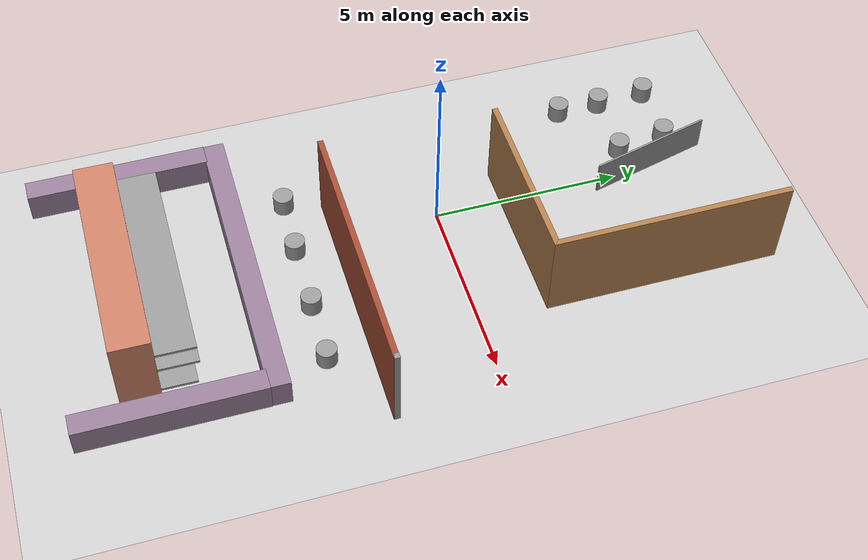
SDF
<sdf version="1.7">
 <world name="default">
  <light name="sun" type="directional">
   <pose>0 0 10 0 -0 0</pose>
   <diffuse>0.8 0.8 0.8 1</diffuse>
   <specular>0.2 0.2 0.2 1</specular>
   <attenuation>
    <range>1000</range>
    <constant>0.9</constant>
    <linear>0.01</linear>
    <quadratic>0.001</quadratic>
   </attenuation>
   <direction>-0.5 0.1 -0.9</direction>
   <spot><inner_angle>0</inner_angle><outer_angle>0</outer_angle><falloff>0</falloff></spot>
  </light>
  <model name="ground_plane">
   <static>1</static>
   <link name="link">
    <collision name="collision">
     <geometry><plane><normal>0 0 1</normal><size>100 100</size></plane></geometry>
     <surface>
      <contact><collide_bitmask>65535</collide_bitmask></contact>
      <friction><ode><mu>100</mu><mu2>50</mu2></ode></friction>
     </surface>
    </collision>
    <visual name="visual">
     <cast_shadows>0</cast_shadows>
     <geometry><plane><normal>0 0 1</normal><size>100 100</size></plane></geometry>
     <material>
      <script><uri>file://media/materials/scripts/gazebo.material</uri><name>Gazebo/Grey</name></script>
     </material>
    </visual>
   </link>
  </model>
  <gravity>0 0 -9.8</gravity>
  <magnetic_field>6e-06 2.3e-05 -4.2e-05</magnetic_field>
  <atmosphere type="adiabatic"/>
  <physics type="ode">
   <max_step_size>0.001</max_step_size>
   <real_time_factor>1</real_time_factor>
   <real_time_update_rate>1000</real_time_update_rate>
  </physics>
  <scene><ambient>0.4 0.4 0.4 1</ambient><background>0.7 0.7 0.7 1</background><shadows>1</shadows></scene>
  <spherical_coordinates>
   <surface_model>EARTH_WGS84</surface_model>
   <latitude_deg>0</latitude_deg>
   <longitude_deg>0</longitude_deg>
   <elevation>0</elevation>
   <heading_deg>0</heading_deg>
  </spherical_coordinates>
  <model name="newshelf">
   <link name="link">
    <inertial>
     <mass>120605</mass>
     <inertia><ixx>399998</ixx><ixy>0</ixy><ixz>0</ixz><iyy>82465.1</iyy><iyz>0</iyz><izz>337634</izz></inertia>
    </inertial>
    <pose>0.259078 4.4314 0.823715 0 -0 0</pose>
    <visual name="visual">
     <geometry><box><size>1 5.70912 2.68424</size></box></geometry>
     <material>
      <script><name>Gazebo/Grey</name><uri>file://media/materials/scripts/gazebo.material</uri></script>
      <shader type="pixel"><normal_map>__default__</normal_map></shader>
      <ambient>0.8 0.5 0.4 1</ambient>
      <diffuse>0.7 0.7 0.7 1</diffuse>
      <specular>0.01 0.01 0.01 1</specular>
      <emissive>0 0 0 1</emissive>
     </material>
    </visual>
    <collision name="collision">
     <geometry><box><size>1 5.70912 2.68424</size></box></geometry>
     <surface>
      <friction>
       <ode><mu>1</mu><mu2>1</mu2><fdir1>0 0 0</fdir1><slip1>0</slip1><slip2>0</slip2></ode>
       <torsional>
        <coefficient>1</coefficient>
        <patch_radius>0</patch_radius>
        <surface_radius>0</surface_radius>
        <use_patch_radius>1</use_patch_radius>
        <ode><slip>0</slip></ode>
       </torsional>
      </friction>
      <bounce><restitution_coefficient>0</restitution_coefficient><threshold>1e+06</threshold></bounce>
      <contact>
       <collide_without_contact>0</collide_without_contact>
       <collide_without_contact_bitmask>1</collide_without_contact_bitmask>
       <collide_bitmask>1</collide_bitmask>
       <ode>
        <soft_cfm>0</soft_cfm>
        <soft_erp>0.2</soft_erp>
        <kp>1e+13</kp>
        <kd>1</kd>
        <max_vel>0.01</max_vel>
        <min_depth>0</min_depth>
       </ode>
       <bullet>
        <split_impulse>1</split_impulse>
        <split_impulse_penetration_threshold>-0.01</split_impulse_penetration_threshold>
        <soft_cfm>0</soft_cfm>
        <soft_erp>0.2</soft_erp>
        <kp>1e+13</kp>
        <kd>1</kd>
       </bullet>
      </contact>
     </surface>
    </collision>
   </link>
   <link name="link_0">
    <inertial>
     <mass>260.464</mass>
     <inertia><ixx>676.737</ixx><ixy>0</ixy><ixz>0</ixz><iyy>21.8018</iyy><iyz>0</iyz><izz>698.346</izz></inertia>
    </inertial>
    <pose>-0.74219 4.40341 0.946107 0 -0 0</pose>
    <visual name="visual">
     <geometry><box><size>1 5.58336 0.066643</size></box></geometry>
     <material>
      <lighting>1</lighting>
      <script><uri>file://media/materials/scripts/gazebo.material</uri><name>Gazebo/Grey</name></script>
      <shader type="pixel"><normal_map>__default__</normal_map></shader>
      <emissive>0 0 0 1</emissive>
     </material>
    </visual>
    <collision name="collision">
     <geometry><box><size>1 5.58336 0.066643</size></box></geometry>
     <surface>
      <friction>
       <ode><mu>1</mu><mu2>1</mu2><fdir1>0 0 0</fdir1><slip1>0</slip1><slip2>0</slip2></ode>
       <torsional>
        <coefficient>1</coefficient>
        <patch_radius>0</patch_radius>
        <surface_radius>0</surface_radius>
        <use_patch_radius>1</use_patch_radius>
        <ode><slip>0</slip></ode>
       </torsional>
      </friction>
      <bounce><restitution_coefficient>0</restitution_coefficient><threshold>1e+06</threshold></bounce>
      <contact>
       <collide_without_contact>0</collide_without_contact>
       <collide_without_contact_bitmask>1</collide_without_contact_bitmask>
       <collide_bitmask>1</collide_bitmask>
       <ode>
        <soft_cfm>0</soft_cfm>
        <soft_erp>0.2</soft_erp>
        <kp>1e+13</kp>
        <kd>1</kd>
        <max_vel>0.01</max_vel>
        <min_depth>0</min_depth>
       </ode>
       <bullet>
        <split_impulse>1</split_impulse>
        <split_impulse_penetration_threshold>-0.01</split_impulse_penetration_threshold>
        <soft_cfm>0</soft_cfm>
        <soft_erp>0.2</soft_erp>
        <kp>1e+13</kp>
        <kd>1</kd>
       </bullet>
      </contact>
     </surface>
    </collision>
   </link>
   <link name="link_0_clone">
    <inertial>
     <mass>260.464</mass>
     <inertia><ixx>676.737</ixx><ixy>0</ixy><ixz>0</ixz><iyy>21.8018</iyy><iyz>0</iyz><izz>698.346</izz></inertia>
    </inertial>
    <pose>-0.728123 4.45471 1.57146 0 -0 0</pose>
    <visual name="visual">
     <geometry><box><size>1 5.58336 0.066643</size></box></geometry>
     <material>
      <lighting>1</lighting>
      <script><uri>file://media/materials/scripts/gazebo.material</uri><name>Gazebo/Grey</name></script>
      <shader type="pixel"><normal_map>__default__</normal_map></shader>
      <emissive>0 0 0 1</emissive>
     </material>
    </visual>
    <collision name="collision">
     <geometry><box><size>1 5.58336 0.066643</size></box></geometry>
     <surface>
      <friction>
       <ode><mu>1</mu><mu2>1</mu2><fdir1>0 0 0</fdir1><slip1>0</slip1><slip2>0</slip2></ode>
       <torsional>
        <coefficient>1</coefficient>
        <patch_radius>0</patch_radius>
        <surface_radius>0</surface_radius>
        <use_patch_radius>1</use_patch_radius>
        <ode><slip>0</slip></ode>
       </torsional>
      </friction>
      <bounce><restitution_coefficient>0</restitution_coefficient><threshold>1e+06</threshold></bounce>
      <contact>
       <collide_without_contact>0</collide_without_contact>
       <collide_without_contact_bitmask>1</collide_without_contact_bitmask>
       <collide_bitmask>1</collide_bitmask>
       <ode>
        <soft_cfm>0</soft_cfm>
        <soft_erp>0.2</soft_erp>
        <kp>1e+13</kp>
        <kd>1</kd>
        <max_vel>0.01</max_vel>
        <min_depth>0</min_depth>
       </ode>
       <bullet>
        <split_impulse>1</split_impulse>
        <split_impulse_penetration_threshold>-0.01</split_impulse_penetration_threshold>
        <soft_cfm>0</soft_cfm>
        <soft_erp>0.2</soft_erp>
        <kp>1e+13</kp>
        <kd>1</kd>
       </bullet>
      </contact>
     </surface>
    </collision>
   </link>
   <link name="link_0_clone_0">
    <inertial>
     <mass>260.464</mass>
     <inertia><ixx>676.737</ixx><ixy>0</ixy><ixz>0</ixz><iyy>21.8018</iyy><iyz>0</iyz><izz>698.346</izz></inertia>
    </inertial>
    <pose>-0.630494 4.42569 0.204391 0 -0 0</pose>
    <visual name="visual">
     <geometry><box><size>1 5.58336 0.066643</size></box></geometry>
     <material>
      <lighting>1</lighting>
      <script><uri>file://media/materials/scripts/gazebo.material</uri><name>Gazebo/Grey</name></script>
      <shader type="pixel"><normal_map>__default__</normal_map></shader>
      <emissive>0 0 0 1</emissive>
     </material>
    </visual>
    <collision name="collision">
     <geometry><box><size>1 5.58336 0.066643</size></box></geometry>
     <surface>
      <friction>
       <ode><mu>1</mu><mu2>1</mu2><fdir1>0 0 0</fdir1><slip1>0</slip1><slip2>0</slip2></ode>
       <torsional>
        <coefficient>1</coefficient>
        <patch_radius>0</patch_radius>
        <surface_radius>0</surface_radius>
        <use_patch_radius>1</use_patch_radius>
        <ode><slip>0</slip></ode>
       </torsional>
      </friction>
      <bounce><restitution_coefficient>0</restitution_coefficient><threshold>1e+06</threshold></bounce>
      <contact>
       <collide_without_contact>0</collide_without_contact>
       <collide_without_contact_bitmask>1</collide_without_contact_bitmask>
       <collide_bitmask>1</collide_bitmask>
       <ode>
        <soft_cfm>0</soft_cfm>
        <soft_erp>0.2</soft_erp>
        <kp>1e+13</kp>
        <kd>1</kd>
        <max_vel>0.01</max_vel>
        <min_depth>0</min_depth>
       </ode>
       <bullet>
        <split_impulse>1</split_impulse>
        <split_impulse_penetration_threshold>-0.01</split_impulse_penetration_threshold>
        <soft_cfm>0</soft_cfm>
        <soft_erp>0.2</soft_erp>
        <kp>1e+13</kp>
        <kd>1</kd>
       </bullet>
      </contact>
     </surface>
    </collision>
   </link>
   <joint name="link_0_JOINT_0" type="fixed">
    <parent>link_0</parent>
    <child>link</child>
    <physics>
     <ode><limit><cfm>0</cfm><erp>0.2</erp></limit><suspension><cfm>0</cfm><erp>0.2</erp></suspension></ode>
    </physics>
   </joint>
   <joint name="link_JOINT_1" type="fixed">
    <parent>link</parent>
    <child>link_0_clone_0</child>
    <physics>
     <ode><limit><cfm>0</cfm><erp>0.2</erp></limit><suspension><cfm>0</cfm><erp>0.2</erp></suspension></ode>
    </physics>
   </joint>
   <joint name="link_JOINT_2" type="fixed">
    <parent>link</parent>
    <child>link_0_clone</child>
    <physics>
     <ode><limit><cfm>0</cfm><erp>0.2</erp></limit><suspension><cfm>0</cfm><erp>0.2</erp></suspension></ode>
    </physics>
   </joint>
   <static>0</static>
   <pose>-3.14649 -8.18633 0.708205 0 -0 -1.58189</pose>
  </model>
  <model name="newbar">
   <link name="link">
    <inertial>
     <mass>2446.61</mass>
     <inertia><ixx>13212.4</ixx><ixy>0</ixy><ixz>0</ixz><iyy>186.616</iyy><iyz>0</iyz><izz>13155.8</izz></inertia>
    </inertial>
    <pose>-0.047176 1.23412 -0.609911 0 -0 0.071935</pose>
    <visual name="visual">
     <geometry><box><size>0.564732 8.01293 0.772258</size></box></geometry>
     <material>
      <script><name>Gazebo/Grey</name><uri>file://media/materials/scripts/gazebo.material</uri></script>
      <shader type="pixel"><normal_map>__default__</normal_map></shader>
      <ambient>0.8 0.5 0.4 1</ambient>
      <diffuse>0.6 0.5 0.6 1</diffuse>
      <specular>0.01 0.01 0.01 1</specular>
      <emissive>0 0 0 1</emissive>
     </material>
    </visual>
    <collision name="collision">
     <geometry><box><size>0.564732 8.01293 0.772258</size></box></geometry>
     <surface>
      <friction>
       <ode><mu>1</mu><mu2>1</mu2><fdir1>0 0 0</fdir1><slip1>0</slip1><slip2>0</slip2></ode>
       <torsional>
        <coefficient>1</coefficient>
        <patch_radius>0</patch_radius>
        <surface_radius>0</surface_radius>
        <use_patch_radius>1</use_patch_radius>
        <ode><slip>0</slip></ode>
       </torsional>
      </friction>
      <bounce><restitution_coefficient>0</restitution_coefficient><threshold>1e+06</threshold></bounce>
      <contact>
       <collide_without_contact>0</collide_without_contact>
       <collide_without_contact_bitmask>1</collide_without_contact_bitmask>
       <collide_bitmask>1</collide_bitmask>
       <ode>
        <soft_cfm>0</soft_cfm>
        <soft_erp>0.2</soft_erp>
        <kp>1e+13</kp>
        <kd>1</kd>
        <max_vel>0.01</max_vel>
        <min_depth>0</min_depth>
       </ode>
       <bullet>
        <split_impulse>1</split_impulse>
        <split_impulse_penetration_threshold>-0.01</split_impulse_penetration_threshold>
        <soft_cfm>0</soft_cfm>
        <soft_erp>0.2</soft_erp>
        <kp>1e+13</kp>
        <kd>1</kd>
       </bullet>
      </contact>
     </surface>
    </collision>
   </link>
   <link name="link_clone">
    <inertial>
     <mass>1483</mass>
     <inertia><ixx>2840.52</ixx><ixy>0</ixy><ixz>0</ixz><iyy>117.216</iyy><iyz>0</iyz><izz>2802.13</izz></inertia>
    </inertial>
    <pose>-2.38978 -2.66508 -0.609913 0 0 -1.50428</pose>
    <visual name="visual">
     <geometry><box><size>0.564732 4.72812 0.793446</size></box></geometry>
     <material>
      <script><name>Gazebo/Grey</name><uri>file://media/materials/scripts/gazebo.material</uri></script>
      <shader type="pixel"><normal_map>__default__</normal_map></shader>
      <ambient>0.8 0.5 0.4 1</ambient>
      <diffuse>0.6 0.5 0.6 1</diffuse>
      <specular>0.01 0.01 0.01 1</specular>
      <emissive>0 0 0 1</emissive>
     </material>
    </visual>
    <collision name="collision">
     <geometry><box><size>0.564732 4.72812 0.793446</size></box></geometry>
     <surface>
      <friction>
       <ode><mu>1</mu><mu2>1</mu2><fdir1>0 0 0</fdir1><slip1>0</slip1><slip2>0</slip2></ode>
       <torsional>
        <coefficient>1</coefficient>
        <patch_radius>0</patch_radius>
        <surface_radius>0</surface_radius>
        <use_patch_radius>1</use_patch_radius>
        <ode><slip>0</slip></ode>
       </torsional>
      </friction>
      <bounce><restitution_coefficient>0</restitution_coefficient><threshold>1e+06</threshold></bounce>
      <contact>
       <collide_without_contact>0</collide_without_contact>
       <collide_without_contact_bitmask>1</collide_without_contact_bitmask>
       <collide_bitmask>1</collide_bitmask>
       <ode>
        <soft_cfm>0</soft_cfm>
        <soft_erp>0.2</soft_erp>
        <kp>1e+13</kp>
        <kd>1</kd>
        <max_vel>0.01</max_vel>
        <min_depth>0</min_depth>
       </ode>
       <bullet>
        <split_impulse>1</split_impulse>
        <split_impulse_penetration_threshold>-0.01</split_impulse_penetration_threshold>
        <soft_cfm>0</soft_cfm>
        <soft_erp>0.2</soft_erp>
        <kp>1e+13</kp>
        <kd>1</kd>
       </bullet>
      </contact>
     </surface>
    </collision>
   </link>
   <link name="link_clone_clone">
    <inertial>
     <mass>1457.27</mass>
     <inertia><ixx>2798.86</ixx><ixy>0</ixy><ixz>0</ixz><iyy>112.258</iyy><iyz>0</iyz><izz>2764.07</izz></inertia>
    </inertial>
    <pose>-2.89432 4.78289 -0.609913 0 0 -1.50335</pose>
    <visual name="visual">
     <geometry><box><size>0.564732 4.7373 0.778123</size></box></geometry>
     <material>
      <script><name>Gazebo/Grey</name><uri>file://media/materials/scripts/gazebo.material</uri></script>
      <shader type="pixel"><normal_map>__default__</normal_map></shader>
      <ambient>0.8 0.5 0.4 1</ambient>
      <diffuse>0.6 0.5 0.6 1</diffuse>
      <specular>0.01 0.01 0.01 1</specular>
      <emissive>0 0 0 1</emissive>
     </material>
    </visual>
    <collision name="collision">
     <geometry><box><size>0.564732 4.7373 0.778123</size></box></geometry>
     <surface>
      <friction>
       <ode><mu>1</mu><mu2>1</mu2><fdir1>0 0 0</fdir1><slip1>0</slip1><slip2>0</slip2></ode>
       <torsional>
        <coefficient>1</coefficient>
        <patch_radius>0</patch_radius>
        <surface_radius>0</surface_radius>
        <use_patch_radius>1</use_patch_radius>
        <ode><slip>0</slip></ode>
       </torsional>
      </friction>
      <bounce><restitution_coefficient>0</restitution_coefficient><threshold>1e+06</threshold></bounce>
      <contact>
       <collide_without_contact>0</collide_without_contact>
       <collide_without_contact_bitmask>1</collide_without_contact_bitmask>
       <collide_bitmask>1</collide_bitmask>
       <ode>
        <soft_cfm>0</soft_cfm>
        <soft_erp>0.2</soft_erp>
        <kp>1e+13</kp>
        <kd>1</kd>
        <max_vel>0.01</max_vel>
        <min_depth>0</min_depth>
       </ode>
       <bullet>
        <split_impulse>1</split_impulse>
        <split_impulse_penetration_threshold>-0.01</split_impulse_penetration_threshold>
        <soft_cfm>0</soft_cfm>
        <soft_erp>0.2</soft_erp>
        <kp>1e+13</kp>
        <kd>1</kd>
       </bullet>
      </contact>
     </surface>
    </collision>
   </link>
   <joint name="link_JOINT_6" type="fixed">
    <parent>link</parent>
    <child>link_clone_clone</child>
    <physics>
     <ode><limit><cfm>0</cfm><erp>0.2</erp></limit><suspension><cfm>0</cfm><erp>0.2</erp></suspension></ode>
    </physics>
   </joint>
   <joint name="link_clone_JOINT_5" type="fixed">
    <parent>link_clone</parent>
    <child>link</child>
    <physics>
     <ode><limit><cfm>0</cfm><erp>0.2</erp></limit><suspension><cfm>0</cfm><erp>0.2</erp></suspension></ode>
    </physics>
   </joint>
   <static>0</static>
   <pose>-0.476103 -5.3415 -0.025705 -3.14056 -6.9e-05 1.63576</pose>
  </model>
  <model name="newbeerchair">
   <link name="link">
    <inertial>
     <mass>289.07</mass>
     <inertia><ixx>10.8419</ixx><ixy>0</ixy><ixz>0</ixz><iyy>10.8419</iyy><iyz>0</iyz><izz>10.0039</izz></inertia>
    </inertial>
    <pose>0.123755 -0.667928 0 0 -0 0</pose>
    <visual name="visual">
     <geometry><cylinder><radius>0.263086</radius><length>0.492372</length></cylinder></geometry>
     <material>
      <script><name>Gazebo/Grey</name><uri>file://media/materials/scripts/gazebo.material</uri></script>
      <shader type="pixel"><normal_map>__default__</normal_map></shader>
     </material>
    </visual>
    <collision name="collision">
     <geometry><cylinder><radius>0.263086</radius><length>0.492372</length></cylinder></geometry>
     <surface>
      <friction>
       <ode><mu>1</mu><mu2>1</mu2><fdir1>0 0 0</fdir1><slip1>0</slip1><slip2>0</slip2></ode>
       <torsional>
        <coefficient>1</coefficient>
        <patch_radius>0</patch_radius>
        <surface_radius>0</surface_radius>
        <use_patch_radius>1</use_patch_radius>
        <ode><slip>0</slip></ode>
       </torsional>
      </friction>
      <bounce><restitution_coefficient>0</restitution_coefficient><threshold>1e+06</threshold></bounce>
      <contact>
       <collide_without_contact>0</collide_without_contact>
       <collide_without_contact_bitmask>1</collide_without_contact_bitmask>
       <collide_bitmask>1</collide_bitmask>
       <ode>
        <soft_cfm>0</soft_cfm>
        <soft_erp>0.2</soft_erp>
        <kp>1e+13</kp>
        <kd>1</kd>
        <max_vel>0.01</max_vel>
        <min_depth>0</min_depth>
       </ode>
       <bullet>
        <split_impulse>1</split_impulse>
        <split_impulse_penetration_threshold>-0.01</split_impulse_penetration_threshold>
        <soft_cfm>0</soft_cfm>
        <soft_erp>0.2</soft_erp>
        <kp>1e+13</kp>
        <kd>1</kd>
       </bullet>
      </contact>
     </surface>
    </collision>
   </link>
   <static>0</static>
   <pose>3.71044 -3.31122 0.436007 2.1e-05 8e-06 2.3e-05</pose>
  </model>
  <model name="newbeerchair_clone">
   <link name="link">
    <inertial>
     <mass>289.07</mass>
     <inertia><ixx>10.8419</ixx><ixy>0</ixy><ixz>0</ixz><iyy>10.8419</iyy><iyz>0</iyz><izz>10.0039</izz></inertia>
    </inertial>
    <pose>0.123755 -0.667928 0 0 -0 0</pose>
    <visual name="visual">
     <geometry><cylinder><radius>0.263086</radius><length>0.492372</length></cylinder></geometry>
     <material>
      <script><name>Gazebo/Grey</name><uri>file://media/materials/scripts/gazebo.material</uri></script>
      <shader type="pixel"><normal_map>__default__</normal_map></shader>
     </material>
    </visual>
    <collision name="collision">
     <geometry><cylinder><radius>0.263086</radius><length>0.492372</length></cylinder></geometry>
     <surface>
      <friction>
       <ode><mu>1</mu><mu2>1</mu2><fdir1>0 0 0</fdir1><slip1>0</slip1><slip2>0</slip2></ode>
       <torsional>
        <coefficient>1</coefficient>
        <patch_radius>0</patch_radius>
        <surface_radius>0</surface_radius>
        <use_patch_radius>1</use_patch_radius>
        <ode><slip>0</slip></ode>
       </torsional>
      </friction>
      <bounce><restitution_coefficient>0</restitution_coefficient><threshold>1e+06</threshold></bounce>
      <contact>
       <collide_without_contact>0</collide_without_contact>
       <collide_without_contact_bitmask>1</collide_without_contact_bitmask>
       <collide_bitmask>1</collide_bitmask>
       <ode>
        <soft_cfm>0</soft_cfm>
        <soft_erp>0.2</soft_erp>
        <kp>1e+13</kp>
        <kd>1</kd>
        <max_vel>0.01</max_vel>
        <min_depth>0</min_depth>
       </ode>
       <bullet>
        <split_impulse>1</split_impulse>
        <split_impulse_penetration_threshold>-0.01</split_impulse_penetration_threshold>
        <soft_cfm>0</soft_cfm>
        <soft_erp>0.2</soft_erp>
        <kp>1e+13</kp>
        <kd>1</kd>
       </bullet>
      </contact>
     </surface>
    </collision>
   </link>
   <static>0</static>
   <pose>2.04559 -3.28031 0.435978 1e-06 -7e-06 -3.1e-05</pose>
  </model>
  <model name="newbeerchair_clone_0">
   <link name="link">
    <inertial>
     <mass>289.07</mass>
     <inertia><ixx>10.8419</ixx><ixy>0</ixy><ixz>0</ixz><iyy>10.8419</iyy><iyz>0</iyz><izz>10.0039</izz></inertia>
    </inertial>
    <pose>0.123755 -0.667928 0 0 -0 0</pose>
    <visual name="visual">
     <geometry><cylinder><radius>0.263086</radius><length>0.492372</length></cylinder></geometry>
     <material>
      <script><name>Gazebo/Grey</name><uri>file://media/materials/scripts/gazebo.material</uri></script>
      <shader type="pixel"><normal_map>__default__</normal_map></shader>
     </material>
    </visual>
    <collision name="collision">
     <geometry><cylinder><radius>0.263086</radius><length>0.492372</length></cylinder></geometry>
     <surface>
      <friction>
       <ode><mu>1</mu><mu2>1</mu2><fdir1>0 0 0</fdir1><slip1>0</slip1><slip2>0</slip2></ode>
       <torsional>
        <coefficient>1</coefficient>
        <patch_radius>0</patch_radius>
        <surface_radius>0</surface_radius>
        <use_patch_radius>1</use_patch_radius>
        <ode><slip>0</slip></ode>
       </torsional>
      </friction>
      <bounce><restitution_coefficient>0</restitution_coefficient><threshold>1e+06</threshold></bounce>
      <contact>
       <collide_without_contact>0</collide_without_contact>
       <collide_without_contact_bitmask>1</collide_without_contact_bitmask>
       <collide_bitmask>1</collide_bitmask>
       <ode>
        <soft_cfm>0</soft_cfm>
        <soft_erp>0.2</soft_erp>
        <kp>1e+13</kp>
        <kd>1</kd>
        <max_vel>0.01</max_vel>
        <min_depth>0</min_depth>
       </ode>
       <bullet>
        <split_impulse>1</split_impulse>
        <split_impulse_penetration_threshold>-0.01</split_impulse_penetration_threshold>
        <soft_cfm>0</soft_cfm>
        <soft_erp>0.2</soft_erp>
        <kp>1e+13</kp>
        <kd>1</kd>
       </bullet>
      </contact>
     </surface>
    </collision>
   </link>
   <static>0</static>
   <pose>0.212656 -3.2515 0.435985 -1e-06 -1e-06 -5.5e-05</pose>
  </model>
  <model name="newbeerchair_clone_1">
   <link name="link">
    <inertial>
     <mass>289.07</mass>
     <inertia><ixx>10.8419</ixx><ixy>0</ixy><ixz>0</ixz><iyy>10.8419</iyy><iyz>0</iyz><izz>10.0039</izz></inertia>
    </inertial>
    <pose>0.123755 -0.667928 0 0 -0 0</pose>
    <visual name="visual">
     <geometry><cylinder><radius>0.263086</radius><length>0.492372</length></cylinder></geometry>
     <material>
      <script><name>Gazebo/Grey</name><uri>file://media/materials/scripts/gazebo.material</uri></script>
      <shader type="pixel"><normal_map>__default__</normal_map></shader>
     </material>
    </visual>
    <collision name="collision">
     <geometry><cylinder><radius>0.263086</radius><length>0.492372</length></cylinder></geometry>
     <surface>
      <friction>
       <ode><mu>1</mu><mu2>1</mu2><fdir1>0 0 0</fdir1><slip1>0</slip1><slip2>0</slip2></ode>
       <torsional>
        <coefficient>1</coefficient>
        <patch_radius>0</patch_radius>
        <surface_radius>0</surface_radius>
        <use_patch_radius>1</use_patch_radius>
        <ode><slip>0</slip></ode>
       </torsional>
      </friction>
      <bounce><restitution_coefficient>0</restitution_coefficient><threshold>1e+06</threshold></bounce>
      <contact>
       <collide_without_contact>0</collide_without_contact>
       <collide_without_contact_bitmask>1</collide_without_contact_bitmask>
       <collide_bitmask>1</collide_bitmask>
       <ode>
        <soft_cfm>0</soft_cfm>
        <soft_erp>0.2</soft_erp>
        <kp>1e+13</kp>
        <kd>1</kd>
        <max_vel>0.01</max_vel>
        <min_depth>0</min_depth>
       </ode>
       <bullet>
        <split_impulse>1</split_impulse>
        <split_impulse_penetration_threshold>-0.01</split_impulse_penetration_threshold>
        <soft_cfm>0</soft_cfm>
        <soft_erp>0.2</soft_erp>
        <kp>1e+13</kp>
        <kd>1</kd>
       </bullet>
      </contact>
     </surface>
    </collision>
   </link>
   <static>0</static>
   <pose>-1.36617 -3.17969 0.435985 -2e-06 -2e-06 -8.8e-05</pose>
  </model>
  <model name="wall">
   <pose>2.32 2.58088 0 0 -0 0</pose>
   <link name="Wall_0">
    <collision name="Wall_0_Collision">
     <geometry><box><size>7 0.15 2.5</size></box></geometry>
     <pose>0 0 1.25 0 -0 0</pose>
    </collision>
    <visual name="Wall_0_Visual">
     <pose>0 0 1.25 0 -0 0</pose>
     <geometry><box><size>7 0.15 2.5</size></box></geometry>
     <material>
      <script><uri>file://media/materials/scripts/gazebo.material</uri><name>Gazebo/Bricks</name></script>
      <ambient>1 1 1 1</ambient>
     </material>
     <meta><layer>0</layer></meta>
    </visual>
    <pose>-0.005 -5.36088 0 0 -0 0</pose>
   </link>
   <link name="Wall_1">
    <collision name="Wall_1_Collision">
     <geometry><box><size>0.15 0.15 2.5</size></box></geometry>
     <pose>0 0 1.25 0 -0 0</pose>
    </collision>
    <visual name="Wall_1_Visual">
     <pose>0 0 1.25 0 -0 0</pose>
     <geometry><box><size>0.15 0.15 2.5</size></box></geometry>
     <material>
      <script><uri>file://media/materials/scripts/gazebo.material</uri><name>Gazebo/Grey</name></script>
      <ambient>1 1 1 1</ambient>
     </material>
     <meta><layer>0</layer></meta>
    </visual>
    <pose>3.43 -5.35088 0 0 -0 0</pose>
   </link>
   <link name="Wall_4">
    <collision name="Wall_4_Collision">
     <geometry><box><size>6.25 0.15 2.5</size></box></geometry>
     <pose>0 0 1.25 0 -0 0</pose>
    </collision>
    <visual name="Wall_4_Visual">
     <pose>0 0 1.25 0 -0 0</pose>
     <geometry><box><size>6.25 0.15 2.5</size></box></geometry>
     <material>
      <script><uri>file://media/materials/scripts/gazebo.material</uri><name>Gazebo/Wood</name></script>
      <ambient>1 1 1 1</ambient>
     </material>
     <meta><layer>0</layer></meta>
    </visual>
    <pose>1.31993 2.31088 0 0 -0 1.5708</pose>
   </link>
   <link name="Wall_6">
    <collision name="Wall_6_Collision">
     <geometry><box><size>4.75 0.15 2.5</size></box></geometry>
     <pose>0 0 1.25 0 -0 0</pose>
    </collision>
    <visual name="Wall_6_Visual">
     <pose>0 0 1.25 0 -0 0</pose>
     <geometry><box><size>4.75 0.15 2.5</size></box></geometry>
     <material>
      <script><uri>file://media/materials/scripts/gazebo.material</uri><name>Gazebo/Wood</name></script>
      <ambient>1 1 1 1</ambient>
     </material>
     <meta><layer>0</layer></meta>
    </visual>
    <pose>-0.980075 -0.739124 0 0 -0 3.14159</pose>
   </link>
   <static>1</static>
  </model>
  <model name="newbeerchair_clone_1_clone">
   <link name="link">
    <inertial>
     <mass>289.07</mass>
     <inertia><ixx>10.8419</ixx><ixy>0</ixy><ixz>0</ixz><iyy>10.8419</iyy><iyz>0</iyz><izz>10.0039</izz></inertia>
    </inertial>
    <pose>0.123755 -0.667928 0 0 -0 0</pose>
    <visual name="visual">
     <geometry><cylinder><radius>0.263086</radius><length>0.492372</length></cylinder></geometry>
     <material>
      <script><name>Gazebo/Grey</name><uri>file://media/materials/scripts/gazebo.material</uri></script>
      <shader type="pixel"><normal_map>__default__</normal_map></shader>
     </material>
    </visual>
    <collision name="collision">
     <geometry><cylinder><radius>0.263086</radius><length>0.492372</length></cylinder></geometry>
     <surface>
      <friction>
       <ode><mu>1</mu><mu2>1</mu2><fdir1>0 0 0</fdir1><slip1>0</slip1><slip2>0</slip2></ode>
       <torsional>
        <coefficient>1</coefficient>
        <patch_radius>0</patch_radius>
        <surface_radius>0</surface_radius>
        <use_patch_radius>1</use_patch_radius>
        <ode><slip>0</slip></ode>
       </torsional>
      </friction>
      <bounce><restitution_coefficient>0</restitution_coefficient><threshold>1e+06</threshold></bounce>
      <contact>
       <collide_without_contact>0</collide_without_contact>
       <collide_without_contact_bitmask>1</collide_without_contact_bitmask>
       <collide_bitmask>1</collide_bitmask>
       <ode>
        <soft_cfm>0</soft_cfm>
        <soft_erp>0.2</soft_erp>
        <kp>1e+13</kp>
        <kd>1</kd>
        <max_vel>0.01</max_vel>
        <min_depth>0</min_depth>
       </ode>
       <bullet>
        <split_impulse>1</split_impulse>
        <split_impulse_penetration_threshold>-0.01</split_impulse_penetration_threshold>
        <soft_cfm>0</soft_cfm>
        <soft_erp>0.2</soft_erp>
        <kp>1e+13</kp>
        <kd>1</kd>
       </bullet>
      </contact>
     </surface>
    </collision>
   </link>
   <static>0</static>
   <pose>-2.60445 7.44579 0.435978 1e-06 -1e-06 -9.1e-05</pose>
  </model>
  <model name="newbeerchair_clone_1_clone_0">
   <link name="link">
    <inertial>
     <mass>289.07</mass>
     <inertia><ixx>10.8419</ixx><ixy>0</ixy><ixz>0</ixz><iyy>10.8419</iyy><iyz>0</iyz><izz>10.0039</izz></inertia>
    </inertial>
    <pose>0.123755 -0.667928 0 0 -0 0</pose>
    <visual name="visual">
     <geometry><cylinder><radius>0.263086</radius><length>0.492372</length></cylinder></geometry>
     <material>
      <script><name>Gazebo/Grey</name><uri>file://media/materials/scripts/gazebo.material</uri></script>
      <shader type="pixel"><normal_map>__default__</normal_map></shader>
     </material>
    </visual>
    <collision name="collision">
     <geometry><cylinder><radius>0.263086</radius><length>0.492372</length></cylinder></geometry>
     <surface>
      <friction>
       <ode><mu>1</mu><mu2>1</mu2><fdir1>0 0 0</fdir1><slip1>0</slip1><slip2>0</slip2></ode>
       <torsional>
        <coefficient>1</coefficient>
        <patch_radius>0</patch_radius>
        <surface_radius>0</surface_radius>
        <use_patch_radius>1</use_patch_radius>
        <ode><slip>0</slip></ode>
       </torsional>
      </friction>
      <bounce><restitution_coefficient>0</restitution_coefficient><threshold>1e+06</threshold></bounce>
      <contact>
       <collide_without_contact>0</collide_without_contact>
       <collide_without_contact_bitmask>1</collide_without_contact_bitmask>
       <collide_bitmask>1</collide_bitmask>
       <ode>
        <soft_cfm>0</soft_cfm>
        <soft_erp>0.2</soft_erp>
        <kp>1e+13</kp>
        <kd>1</kd>
        <max_vel>0.01</max_vel>
        <min_depth>0</min_depth>
       </ode>
       <bullet>
        <split_impulse>1</split_impulse>
        <split_impulse_penetration_threshold>-0.01</split_impulse_penetration_threshold>
        <soft_cfm>0</soft_cfm>
        <soft_erp>0.2</soft_erp>
        <kp>1e+13</kp>
        <kd>1</kd>
       </bullet>
      </contact>
     </surface>
    </collision>
   </link>
   <static>0</static>
   <pose>-2.55829 6.1041 0.436003 1.1e-05 2.5e-05 -0.000101</pose>
  </model>
  <model name="newbeerchair_clone_1_clone_1">
   <link name="link">
    <inertial>
     <mass>289.07</mass>
     <inertia><ixx>10.8419</ixx><ixy>0</ixy><ixz>0</ixz><iyy>10.8419</iyy><iyz>0</iyz><izz>10.0039</izz></inertia>
    </inertial>
    <pose>0.123755 -0.667928 0 0 -0 0</pose>
    <visual name="visual">
     <geometry><cylinder><radius>0.263086</radius><length>0.492372</length></cylinder></geometry>
     <material>
      <script><name>Gazebo/Grey</name><uri>file://media/materials/scripts/gazebo.material</uri></script>
      <shader type="pixel"><normal_map>__default__</normal_map></shader>
     </material>
    </visual>
    <collision name="collision">
     <geometry><cylinder><radius>0.263086</radius><length>0.492372</length></cylinder></geometry>
     <surface>
      <friction>
       <ode><mu>1</mu><mu2>1</mu2><fdir1>0 0 0</fdir1><slip1>0</slip1><slip2>0</slip2></ode>
       <torsional>
        <coefficient>1</coefficient>
        <patch_radius>0</patch_radius>
        <surface_radius>0</surface_radius>
        <use_patch_radius>1</use_patch_radius>
        <ode><slip>0</slip></ode>
       </torsional>
      </friction>
      <bounce><restitution_coefficient>0</restitution_coefficient><threshold>1e+06</threshold></bounce>
      <contact>
       <collide_without_contact>0</collide_without_contact>
       <collide_without_contact_bitmask>1</collide_without_contact_bitmask>
       <collide_bitmask>1</collide_bitmask>
       <ode>
        <soft_cfm>0</soft_cfm>
        <soft_erp>0.2</soft_erp>
        <kp>1e+13</kp>
        <kd>1</kd>
        <max_vel>0.01</max_vel>
        <min_depth>0</min_depth>
       </ode>
       <bullet>
        <split_impulse>1</split_impulse>
        <split_impulse_penetration_threshold>-0.01</split_impulse_penetration_threshold>
        <soft_cfm>0</soft_cfm>
        <soft_erp>0.2</soft_erp>
        <kp>1e+13</kp>
        <kd>1</kd>
       </bullet>
      </contact>
     </surface>
    </collision>
   </link>
   <static>0</static>
   <pose>-2.5436 4.93388 0.435983 -7e-06 -1e-05 -7.9e-05</pose>
  </model>
  <model name="newbeerchair_clone_1_clone_2">
   <link name="link">
    <inertial>
     <mass>289.07</mass>
     <inertia><ixx>10.8419</ixx><ixy>0</ixy><ixz>0</ixz><iyy>10.8419</iyy><iyz>0</iyz><izz>10.0039</izz></inertia>
    </inertial>
    <pose>0.123755 -0.667928 0 0 -0 0</pose>
    <visual name="visual">
     <geometry><cylinder><radius>0.263086</radius><length>0.492372</length></cylinder></geometry>
     <material>
      <script><name>Gazebo/Grey</name><uri>file://media/materials/scripts/gazebo.material</uri></script>
      <shader type="pixel"><normal_map>__default__</normal_map></shader>
     </material>
    </visual>
    <collision name="collision">
     <geometry><cylinder><radius>0.263086</radius><length>0.492372</length></cylinder></geometry>
     <surface>
      <friction>
       <ode><mu>1</mu><mu2>1</mu2><fdir1>0 0 0</fdir1><slip1>0</slip1><slip2>0</slip2></ode>
       <torsional>
        <coefficient>1</coefficient>
        <patch_radius>0</patch_radius>
        <surface_radius>0</surface_radius>
        <use_patch_radius>1</use_patch_radius>
        <ode><slip>0</slip></ode>
       </torsional>
      </friction>
      <bounce><restitution_coefficient>0</restitution_coefficient><threshold>1e+06</threshold></bounce>
      <contact>
       <collide_without_contact>0</collide_without_contact>
       <collide_without_contact_bitmask>1</collide_without_contact_bitmask>
       <collide_bitmask>1</collide_bitmask>
       <ode>
        <soft_cfm>0</soft_cfm>
        <soft_erp>0.2</soft_erp>
        <kp>1e+13</kp>
        <kd>1</kd>
        <max_vel>0.01</max_vel>
        <min_depth>0</min_depth>
       </ode>
       <bullet>
        <split_impulse>1</split_impulse>
        <split_impulse_penetration_threshold>-0.01</split_impulse_penetration_threshold>
        <soft_cfm>0</soft_cfm>
        <soft_erp>0.2</soft_erp>
        <kp>1e+13</kp>
        <kd>1</kd>
       </bullet>
      </contact>
     </surface>
    </collision>
   </link>
   <static>0</static>
   <pose>-0.944676 7.38903 0.43598 4e-06 3e-06 -3e-05</pose>
  </model>
  <model name="newbeerchair_clone_1_clone_3">
   <link name="link">
    <inertial>
     <mass>289.07</mass>
     <inertia><ixx>10.8419</ixx><ixy>0</ixy><ixz>0</ixz><iyy>10.8419</iyy><iyz>0</iyz><izz>10.0039</izz></inertia>
    </inertial>
    <pose>0.123755 -0.667928 0 0 -0 0</pose>
    <visual name="visual">
     <geometry><cylinder><radius>0.263086</radius><length>0.492372</length></cylinder></geometry>
     <material>
      <script><name>Gazebo/Grey</name><uri>file://media/materials/scripts/gazebo.material</uri></script>
      <shader type="pixel"><normal_map>__default__</normal_map></shader>
     </material>
    </visual>
    <collision name="collision">
     <geometry><cylinder><radius>0.263086</radius><length>0.492372</length></cylinder></geometry>
     <surface>
      <friction>
       <ode><mu>1</mu><mu2>1</mu2><fdir1>0 0 0</fdir1><slip1>0</slip1><slip2>0</slip2></ode>
       <torsional>
        <coefficient>1</coefficient>
        <patch_radius>0</patch_radius>
        <surface_radius>0</surface_radius>
        <use_patch_radius>1</use_patch_radius>
        <ode><slip>0</slip></ode>
       </torsional>
      </friction>
      <bounce><restitution_coefficient>0</restitution_coefficient><threshold>1e+06</threshold></bounce>
      <contact>
       <collide_without_contact>0</collide_without_contact>
       <collide_without_contact_bitmask>1</collide_without_contact_bitmask>
       <collide_bitmask>1</collide_bitmask>
       <ode>
        <soft_cfm>0</soft_cfm>
        <soft_erp>0.2</soft_erp>
        <kp>1e+13</kp>
        <kd>1</kd>
        <max_vel>0.01</max_vel>
        <min_depth>0</min_depth>
       </ode>
       <bullet>
        <split_impulse>1</split_impulse>
        <split_impulse_penetration_threshold>-0.01</split_impulse_penetration_threshold>
        <soft_cfm>0</soft_cfm>
        <soft_erp>0.2</soft_erp>
        <kp>1e+13</kp>
        <kd>1</kd>
       </bullet>
      </contact>
     </surface>
    </collision>
   </link>
   <static>0</static>
   <pose>-0.782683 6.04067 0.435988 2e-06 1e-06 -2.1e-05</pose>
  </model>
  <model name="unit_box">
   <link name="link">
    <inertial>
     <mass>0.1614</mass>
     <inertia>
      <ixx>0.160934</ixx>
      <ixy>0</ixy>
      <ixz>0</ixz>
      <iyy>0.0125158</iyy>
      <iyz>0</iyz>
      <izz>0.148487</izz>
     </inertia>
    </inertial>
    <pose>1.77228 -1.15488 -0.005 0.017511 0.000721 0.231741</pose>
    <visual name="visual">
     <geometry><box><size>0.050446 3.32225 0.963327</size></box></geometry>
     <material>
      <script><name>Gazebo/Grey</name><uri>file://media/materials/scripts/gazebo.material</uri></script>
      <shader type="pixel"/>
     </material>
    </visual>
    <collision name="collision">
     <geometry><box><size>0.050446 3.32225 0.963327</size></box></geometry>
     <surface>
      <friction>
       <ode><mu>1</mu><mu2>1</mu2><fdir1>0 0 0</fdir1><slip1>0</slip1><slip2>0</slip2></ode>
       <torsional>
        <coefficient>1</coefficient>
        <patch_radius>0</patch_radius>
        <surface_radius>0</surface_radius>
        <use_patch_radius>1</use_patch_radius>
        <ode><slip>0</slip></ode>
       </torsional>
      </friction>
      <bounce><restitution_coefficient>0</restitution_coefficient><threshold>1e+06</threshold></bounce>
      <contact>
       <collide_without_contact>0</collide_without_contact>
       <collide_without_contact_bitmask>1</collide_without_contact_bitmask>
       <collide_bitmask>1</collide_bitmask>
       <ode>
        <soft_cfm>0</soft_cfm>
        <soft_erp>0.2</soft_erp>
        <kp>1e+13</kp>
        <kd>1</kd>
        <max_vel>0.01</max_vel>
        <min_depth>0</min_depth>
       </ode>
       <bullet>
        <split_impulse>1</split_impulse>
        <split_impulse_penetration_threshold>-0.01</split_impulse_penetration_threshold>
        <soft_cfm>0</soft_cfm>
        <soft_erp>0.2</soft_erp>
        <kp>1e+13</kp>
        <kd>1</kd>
       </bullet>
      </contact>
     </surface>
    </collision>
   </link>
   <static>0</static>
   <pose>-1.68681 7.07951 0.6898 0 -0 0</pose>
  </model>
 </world>
</sdf>
